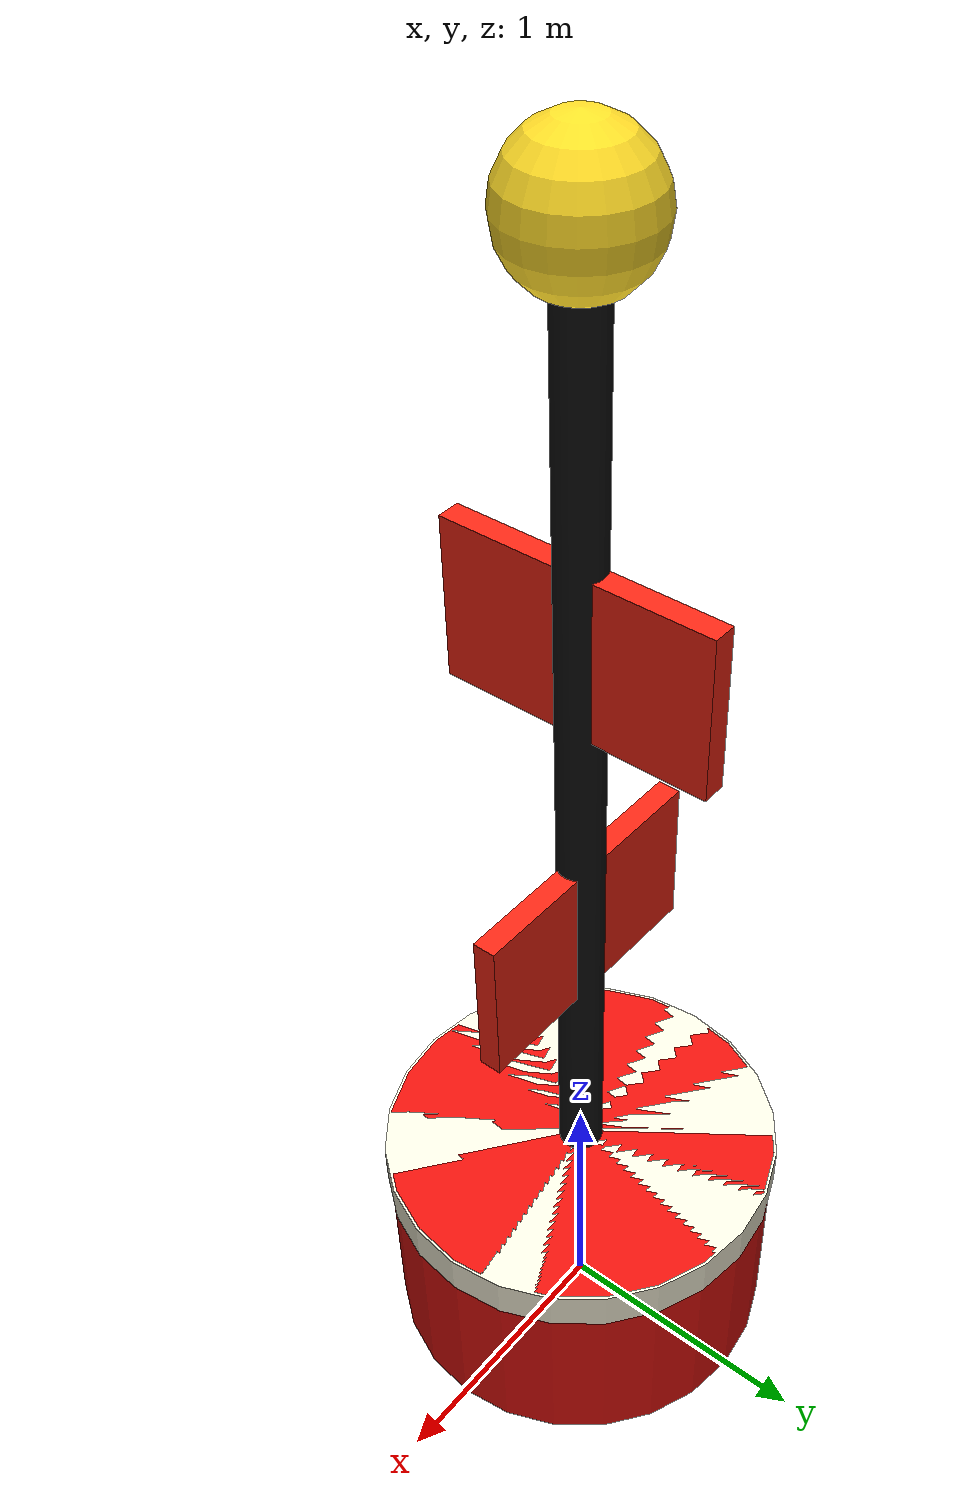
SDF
<?xml version="1.0" ?>
<sdf version="1.8">
  <model name="medium_buoy">
    <link name="body">
      <inertial>
        <mass>140</mass>
        <inertia><ixx>65</ixx><iyy>65</iyy><izz>22</izz></inertia>
      </inertial>
      <collision name="base_collision">
        <pose>0 0 0.45 0 0 0</pose>
        <geometry>
          <cylinder>
            <radius>0.7</radius>
            <length>0.9</length>
          </cylinder>
        </geometry>
      </collision>

      <collision name="mast_collision">
        <pose>0 0 2.55 0 0 0</pose>
        <geometry>
          <cylinder>
            <radius>0.11</radius>
            <length>3.3</length>
          </cylinder>
        </geometry>
      </collision>

      <collision name="daymark_lower_collision">
        <pose>0 0 2.0 0 0 0</pose>
        <geometry>
          <box>
            <size>1.05 0.12 0.65</size>
          </box>
        </geometry>
      </collision>

      <collision name="daymark_upper_collision">
        <pose>0 0 3.1 0 0 1.5708</pose>
        <geometry>
          <box>
            <size>1.05 0.12 0.65</size>
          </box>
        </geometry>
      </collision>

      <visual name="base_float">
        <pose>0 0 0.45 0 0 0</pose>
        <geometry>
          <cylinder>
            <radius>0.72</radius>
            <length>0.9</length>
          </cylinder>
        </geometry>
        <material>
          <ambient>0.65 0.05 0.04 1</ambient>
          <diffuse>0.92 0.07 0.05 1</diffuse>
          <specular>0.25 0.04 0.04 1</specular>
        </material>
      </visual>

      <visual name="white_band">
        <pose>0 0 0.82 0 0 0</pose>
        <geometry>
          <cylinder>
            <radius>0.73</radius>
            <length>0.16</length>
          </cylinder>
        </geometry>
        <material>
          <ambient>0.92 0.9 0.82 1</ambient>
          <diffuse>1 0.98 0.88 1</diffuse>
          <specular>0.45 0.45 0.4 1</specular>
        </material>
      </visual>

      <visual name="tower_mast">
        <pose>0 0 2.55 0 0 0</pose>
        <geometry>
          <cylinder>
            <radius>0.08</radius>
            <length>3.3</length>
          </cylinder>
        </geometry>
        <material>
          <ambient>0.04 0.04 0.04 1</ambient>
          <diffuse>0.06 0.06 0.06 1</diffuse>
          <specular>0.2 0.2 0.2 1</specular>
        </material>
      </visual>

      <visual name="daymark_lower">
        <pose>0 0 2.0 0 0 0</pose>
        <geometry>
          <box>
            <size>0.95 0.08 0.55</size>
          </box>
        </geometry>
        <material>
          <ambient>0.85 0.1 0.06 1</ambient>
          <diffuse>1 0.15 0.08 1</diffuse>
          <specular>0.3 0.05 0.03 1</specular>
        </material>
      </visual>

      <visual name="daymark_upper">
        <pose>0 0 3.1 0 0 1.5708</pose>
        <geometry>
          <box>
            <size>0.95 0.08 0.55</size>
          </box>
        </geometry>
        <material>
          <ambient>0.85 0.1 0.06 1</ambient>
          <diffuse>1 0.15 0.08 1</diffuse>
          <specular>0.3 0.05 0.03 1</specular>
        </material>
      </visual>

      <visual name="top_beacon">
        <pose>0 0 4.35 0 0 0</pose>
        <geometry>
          <sphere>
            <radius>0.22</radius>
          </sphere>
        </geometry>
        <material>
          <ambient>1 0.78 0.1 1</ambient>
          <diffuse>1 0.86 0.15 1</diffuse>
          <specular>1 0.9 0.35 1</specular>
        </material>
      </visual>

      <light name="buoy_light" type="point">
        <pose>0 0 4.35 0 0 0</pose>
        <cast_shadows>false</cast_shadows>
        <intensity>1.2</intensity>
        <diffuse>1 0.78 0.1 1</diffuse>
        <specular>1 0.86 0.25 1</specular>
        <attenuation>
          <range>25</range>
          <constant>0.7</constant>
          <linear>0.04</linear>
          <quadratic>0.002</quadratic>
        </attenuation>
      </light>
    </link>
    <plugin filename="libBoatWaveFollower.so" name="gz::sim::systems::BoatWaveFollower">
      <mean_z>0</mean_z><heave_amplitude>0.08</heave_amplitude>
      <roll_amplitude>0.045</roll_amplitude><pitch_amplitude>0.038</pitch_amplitude>
      <primary_frequency>0.9</primary_frequency><secondary_frequency>1.45</secondary_frequency>
      <wave_number_x>0.2</wave_number_x><wave_number_y>0.16</wave_number_y>
    </plugin>
  </model>
</sdf>
